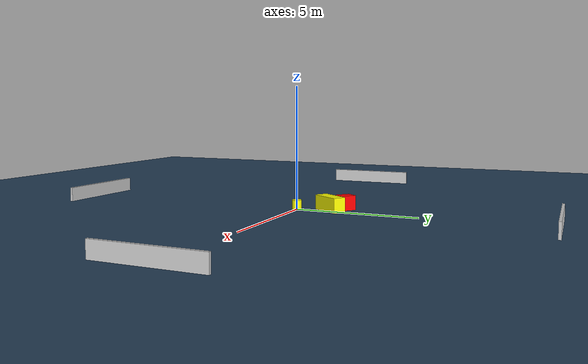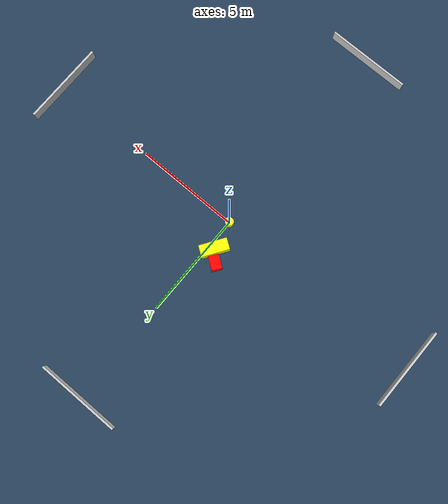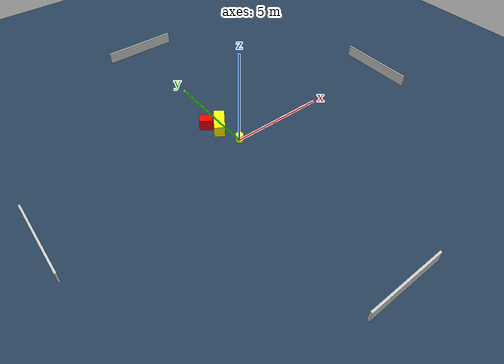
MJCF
<?xml version="1.0" ?>
<mujoco model="generated_environment">
  <option timestep="0.01" integrator="RK4" cone="elliptic"/>
  <default>
    <geom density="1"/>
  </default>
  <asset>
    <texture builtin="gradient" height="3072" name="skybox" rgb1="0.3 0.5 0.7" rgb2="0 0 0" type="skybox" width="512"/>
    <texture builtin="checker" height="300" name="groundplane" rgb1="0.2 0.3 0.4" rgb2="0.1 0.2 0.3" type="2d" width="300"/>
    <material name="groundplane" reflectance="0.2" texrepeat="5 5" texture="groundplane"/>
  </asset>
  <worldbody>
    <light dir="0 0 -1" directional="true" pos="0 0 1.5"/>
    <geom condim="3" friction="0.5 0.005 0.001" material="groundplane" name="floor" pos="0 0 0" size="0 0 0.05" type="plane"/>
    <body name="walls">
      <geom name="wall_1" condim="4" pos="-10.0 0.0 0.3" rgba="0.800000011920929 0.800000011920929 0.800000011920929 1.0" size="0.05 2.0 0.3" type="box"/>
      <geom name="wall_2" condim="4" pos="10.0 0.0 0.3" rgba="0.800000011920929 0.800000011920929 0.800000011920929 1.0" size="0.05 2.0 0.3" type="box"/>
      <geom name="wall_3" condim="4" pos="0.0 -10.0 0.3" rgba="0.800000011920929 0.800000011920929 0.800000011920929 1.0" size="2.0 0.05 0.3" type="box"/>
      <geom name="wall_4" condim="4" pos="0.0 10.0 0.3" rgba="0.800000011920929 0.800000011920929 0.800000011920929 1.0" size="2.0 0.05 0.3" type="box"/>
    </body>
    <body name="robot">
      <joint name="joint_x" type="slide" pos="0 0 0" axis="1 0 0"/>
      <joint name="joint_y" type="slide" pos="0 0 0" axis="0 1 0"/>
      <geom name="robot" type="cylinder" pos="0.0 0.0 0.2" size="0.2 0.2 0.0" mass="5.0" friction="1.0 0.005 0.0001" condim="4" rgba="1.0 1.0 0.0 1.0"/>
    </body>
    <body name="obstacle_1_movable">
      <geom name="obstacle_1_movable" condim="4" pos="-0.25141287640121024 1.3469701165837853 0.3" euler="0 0 146.13038493388686" friction="0.0 0.005 0.001" rgba="1.0 1.0 0.0 1.0" size="0.2725532624286106 0.6555050030329679 0.3" type="box" mass="0.1"/>
      <joint type="free"/>
    </body>
    <body name="obstacle_2_static">
      <geom name="obstacle_2_static" condim="4" pos="-0.717986880885007 1.8234779010898476 0.3" euler="0 0 324.56152179860277" friction="0.0 0.005 0.001" rgba="1.0 0.0 0.0 1.0" size="0.3338991982931657 0.24817498041619396 0.3" type="box"/>
    </body>
  </worldbody>
  <actuator>
    <motor name="actuator_x" joint="joint_x" gear="1" ctrlrange="-1 1"/>
    <motor name="actuator_y" joint="joint_y" gear="1" ctrlrange="-1 1"/>
  </actuator>
</mujoco>
